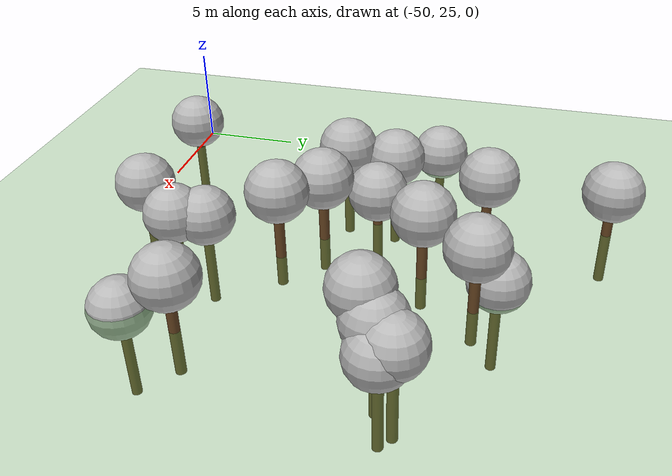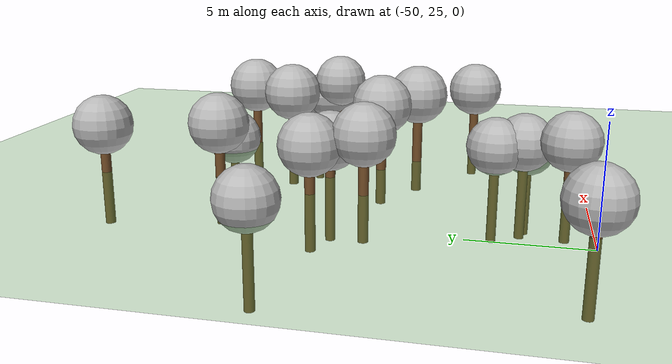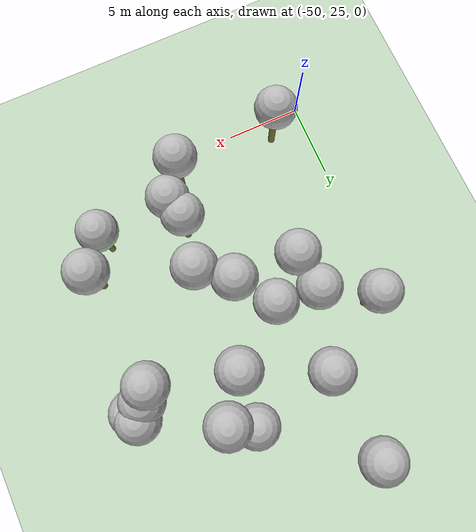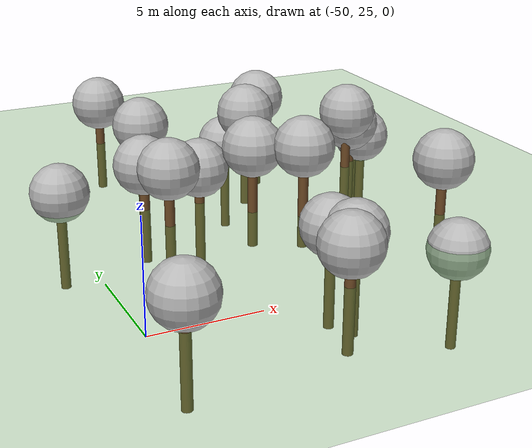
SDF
<sdf version="1.7">
 <world name="default">
  <model name="tree_simple489">
   <static>1</static>
   <link name="link">
    <pose>0 0 0.1 0 -0 0</pose>
    <collision name="collision_trunk">
     <pose>0 0 2 0 -0 0</pose>
     <geometry><cylinder><radius>0.25</radius><length>4</length></cylinder></geometry>
    </collision>
    <collision name="collision_treetop">
     <pose>0 0 5.2 0 -0 0</pose>
     <geometry><sphere><radius>1.5</radius></sphere></geometry>
    </collision>
    <visual name="trunk">
     <pose>0 0 2 0 -0 0</pose>
     <geometry><cylinder><radius>0.25</radius><length>4</length></cylinder></geometry>
     <material>
      <script>
       <uri>model://tree_simple/scripts</uri>
       <uri>model://tree_simple/materials/textures</uri>
       <name>TreeSimple/Trunk</name>
      </script>
     </material>
    </visual>
    <visual name="treetop">
     <pose>0 0 5.2 0 -0 0</pose>
     <geometry><sphere><radius>1.5</radius></sphere></geometry>
     <material>
      <script>
       <uri>model://tree_simple/scripts</uri>
       <uri>model://tree_simple/materials/textures</uri>
       <name>TreeSimple/Treetop</name>
      </script>
     </material>
    </visual>
   </link>
   <pose>-32.6635 39.3278 -3.1328 0 -0 0</pose>
  </model>
  <model name="tree_simple482">
   <static>1</static>
   <link name="link">
    <pose>0 0 0.1 0 -0 0</pose>
    <collision name="collision_trunk">
     <pose>0 0 2 0 -0 0</pose>
     <geometry><cylinder><radius>0.25</radius><length>4</length></cylinder></geometry>
    </collision>
    <collision name="collision_treetop">
     <pose>0 0 5.2 0 -0 0</pose>
     <geometry><sphere><radius>1.5</radius></sphere></geometry>
    </collision>
    <visual name="trunk">
     <pose>0 0 2 0 -0 0</pose>
     <geometry><cylinder><radius>0.25</radius><length>4</length></cylinder></geometry>
     <material>
      <script>
       <uri>model://tree_simple/scripts</uri>
       <uri>model://tree_simple/materials/textures</uri>
       <name>TreeSimple/Trunk</name>
      </script>
     </material>
    </visual>
    <visual name="treetop">
     <pose>0 0 5.2 0 -0 0</pose>
     <geometry><sphere><radius>1.5</radius></sphere></geometry>
     <material>
      <script>
       <uri>model://tree_simple/scripts</uri>
       <uri>model://tree_simple/materials/textures</uri>
       <name>TreeSimple/Treetop</name>
      </script>
     </material>
    </visual>
   </link>
   <pose>-31.7137 39.685 -4.03417 0 -0 0</pose>
  </model>
  <model name="tree_simple474">
   <static>1</static>
   <link name="link">
    <pose>0 0 0.1 0 -0 0</pose>
    <collision name="collision_trunk">
     <pose>0 0 2 0 -0 0</pose>
     <geometry><cylinder><radius>0.25</radius><length>4</length></cylinder></geometry>
    </collision>
    <collision name="collision_treetop">
     <pose>0 0 5.2 0 -0 0</pose>
     <geometry><sphere><radius>1.5</radius></sphere></geometry>
    </collision>
    <visual name="trunk">
     <pose>0 0 2 0 -0 0</pose>
     <geometry><cylinder><radius>0.25</radius><length>4</length></cylinder></geometry>
     <material>
      <script>
       <uri>model://tree_simple/scripts</uri>
       <uri>model://tree_simple/materials/textures</uri>
       <name>TreeSimple/Trunk</name>
      </script>
     </material>
    </visual>
    <visual name="treetop">
     <pose>0 0 5.2 0 -0 0</pose>
     <geometry><sphere><radius>1.5</radius></sphere></geometry>
     <material>
      <script>
       <uri>model://tree_simple/scripts</uri>
       <uri>model://tree_simple/materials/textures</uri>
       <name>TreeSimple/Treetop</name>
      </script>
     </material>
    </visual>
   </link>
   <pose>-45.5609 37.389 -2.99745 0 -0 0</pose>
  </model>
  <model name="tree_simple462">
   <static>1</static>
   <link name="link">
    <pose>0 0 0.1 0 -0 0</pose>
    <collision name="collision_trunk">
     <pose>0 0 2 0 -0 0</pose>
     <geometry><cylinder><radius>0.25</radius><length>4</length></cylinder></geometry>
    </collision>
    <collision name="collision_treetop">
     <pose>0 0 5.2 0 -0 0</pose>
     <geometry><sphere><radius>1.5</radius></sphere></geometry>
    </collision>
    <visual name="trunk">
     <pose>0 0 2 0 -0 0</pose>
     <geometry><cylinder><radius>0.25</radius><length>4</length></cylinder></geometry>
     <material>
      <script>
       <uri>model://tree_simple/scripts</uri>
       <uri>model://tree_simple/materials/textures</uri>
       <name>TreeSimple/Trunk</name>
      </script>
     </material>
    </visual>
    <visual name="treetop">
     <pose>0 0 5.2 0 -0 0</pose>
     <geometry><sphere><radius>1.5</radius></sphere></geometry>
     <material>
      <script>
       <uri>model://tree_simple/scripts</uri>
       <uri>model://tree_simple/materials/textures</uri>
       <name>TreeSimple/Treetop</name>
      </script>
     </material>
    </visual>
   </link>
   <pose>-33.3479 38.601 -2.17219 0 -0 0</pose>
  </model>
  <model name="tree_simple410">
   <static>1</static>
   <link name="link">
    <pose>0 0 0.1 0 -0 0</pose>
    <collision name="collision_trunk">
     <pose>0 0 2 0 -0 0</pose>
     <geometry><cylinder><radius>0.25</radius><length>4</length></cylinder></geometry>
    </collision>
    <collision name="collision_treetop">
     <pose>0 0 5.2 0 -0 0</pose>
     <geometry><sphere><radius>1.5</radius></sphere></geometry>
    </collision>
    <visual name="trunk">
     <pose>0 0 2 0 -0 0</pose>
     <geometry><cylinder><radius>0.25</radius><length>4</length></cylinder></geometry>
     <material>
      <script>
       <uri>model://tree_simple/scripts</uri>
       <uri>model://tree_simple/materials/textures</uri>
       <name>TreeSimple/Trunk</name>
      </script>
     </material>
    </visual>
    <visual name="treetop">
     <pose>0 0 5.2 0 -0 0</pose>
     <geometry><sphere><radius>1.5</radius></sphere></geometry>
     <material>
      <script>
       <uri>model://tree_simple/scripts</uri>
       <uri>model://tree_simple/materials/textures</uri>
       <name>TreeSimple/Treetop</name>
      </script>
     </material>
    </visual>
   </link>
   <pose>-31.9347 40.2537 -3.60387 0 -0 0</pose>
  </model>
  <model name="tree_simple336">
   <static>1</static>
   <link name="link">
    <pose>0 0 0.1 0 -0 0</pose>
    <collision name="collision_trunk">
     <pose>0 0 2 0 -0 0</pose>
     <geometry><cylinder><radius>0.25</radius><length>4</length></cylinder></geometry>
    </collision>
    <collision name="collision_treetop">
     <pose>0 0 5.2 0 -0 0</pose>
     <geometry><sphere><radius>1.5</radius></sphere></geometry>
    </collision>
    <visual name="trunk">
     <pose>0 0 2 0 -0 0</pose>
     <geometry><cylinder><radius>0.25</radius><length>4</length></cylinder></geometry>
     <material>
      <script>
       <uri>model://tree_simple/scripts</uri>
       <uri>model://tree_simple/materials/textures</uri>
       <name>TreeSimple/Trunk</name>
      </script>
     </material>
    </visual>
    <visual name="treetop">
     <pose>0 0 5.2 0 -0 0</pose>
     <geometry><sphere><radius>1.5</radius></sphere></geometry>
     <material>
      <script>
       <uri>model://tree_simple/scripts</uri>
       <uri>model://tree_simple/materials/textures</uri>
       <name>TreeSimple/Treetop</name>
      </script>
     </material>
    </visual>
   </link>
   <pose>-43.902 42.4188 -2.61094 0 -0 0</pose>
  </model>
  <model name="tree_simple331">
   <static>1</static>
   <link name="link">
    <pose>0 0 0.1 0 -0 0</pose>
    <collision name="collision_trunk">
     <pose>0 0 2 0 -0 0</pose>
     <geometry><cylinder><radius>0.25</radius><length>4</length></cylinder></geometry>
    </collision>
    <collision name="collision_treetop">
     <pose>0 0 5.2 0 -0 0</pose>
     <geometry><sphere><radius>1.5</radius></sphere></geometry>
    </collision>
    <visual name="trunk">
     <pose>0 0 2 0 -0 0</pose>
     <geometry><cylinder><radius>0.25</radius><length>4</length></cylinder></geometry>
     <material>
      <script>
       <uri>model://tree_simple/scripts</uri>
       <uri>model://tree_simple/materials/textures</uri>
       <name>TreeSimple/Trunk</name>
      </script>
     </material>
    </visual>
    <visual name="treetop">
     <pose>0 0 5.2 0 -0 0</pose>
     <geometry><sphere><radius>1.5</radius></sphere></geometry>
     <material>
      <script>
       <uri>model://tree_simple/scripts</uri>
       <uri>model://tree_simple/materials/textures</uri>
       <name>TreeSimple/Treetop</name>
      </script>
     </material>
    </visual>
   </link>
   <pose>-40.8342 34.8238 -1.96244 0 -0 0</pose>
  </model>
  <model name="tree_simple319">
   <static>1</static>
   <link name="link">
    <pose>0 0 0.1 0 -0 0</pose>
    <collision name="collision_trunk">
     <pose>0 0 2 0 -0 0</pose>
     <geometry><cylinder><radius>0.25</radius><length>4</length></cylinder></geometry>
    </collision>
    <collision name="collision_treetop">
     <pose>0 0 5.2 0 -0 0</pose>
     <geometry><sphere><radius>1.5</radius></sphere></geometry>
    </collision>
    <visual name="trunk">
     <pose>0 0 2 0 -0 0</pose>
     <geometry><cylinder><radius>0.25</radius><length>4</length></cylinder></geometry>
     <material>
      <script>
       <uri>model://tree_simple/scripts</uri>
       <uri>model://tree_simple/materials/textures</uri>
       <name>TreeSimple/Trunk</name>
      </script>
     </material>
    </visual>
    <visual name="treetop">
     <pose>0 0 5.2 0 -0 0</pose>
     <geometry><sphere><radius>1.5</radius></sphere></geometry>
     <material>
      <script>
       <uri>model://tree_simple/scripts</uri>
       <uri>model://tree_simple/materials/textures</uri>
       <name>TreeSimple/Treetop</name>
      </script>
     </material>
    </visual>
   </link>
   <pose>-33.8227 27.31 -5.68486 0 -0 0</pose>
  </model>
  <model name="tree_simple311">
   <static>1</static>
   <link name="link">
    <pose>0 0 0.1 0 -0 0</pose>
    <collision name="collision_trunk">
     <pose>0 0 2 0 -0 0</pose>
     <geometry><cylinder><radius>0.25</radius><length>4</length></cylinder></geometry>
    </collision>
    <collision name="collision_treetop">
     <pose>0 0 5.2 0 -0 0</pose>
     <geometry><sphere><radius>1.5</radius></sphere></geometry>
    </collision>
    <visual name="trunk">
     <pose>0 0 2 0 -0 0</pose>
     <geometry><cylinder><radius>0.25</radius><length>4</length></cylinder></geometry>
     <material>
      <script>
       <uri>model://tree_simple/scripts</uri>
       <uri>model://tree_simple/materials/textures</uri>
       <name>TreeSimple/Trunk</name>
      </script>
     </material>
    </visual>
    <visual name="treetop">
     <pose>0 0 5.2 0 -0 0</pose>
     <geometry><sphere><radius>1.5</radius></sphere></geometry>
     <material>
      <script>
       <uri>model://tree_simple/scripts</uri>
       <uri>model://tree_simple/materials/textures</uri>
       <name>TreeSimple/Treetop</name>
      </script>
     </material>
    </visual>
   </link>
   <pose>-49.3858 39.1709 -4.47542 0 -0 0</pose>
  </model>
  <model name="tree_simple291">
   <static>1</static>
   <link name="link">
    <pose>0 0 0.1 0 -0 0</pose>
    <collision name="collision_trunk">
     <pose>0 0 2 0 -0 0</pose>
     <geometry><cylinder><radius>0.25</radius><length>4</length></cylinder></geometry>
    </collision>
    <collision name="collision_treetop">
     <pose>0 0 5.2 0 -0 0</pose>
     <geometry><sphere><radius>1.5</radius></sphere></geometry>
    </collision>
    <visual name="trunk">
     <pose>0 0 2 0 -0 0</pose>
     <geometry><cylinder><radius>0.25</radius><length>4</length></cylinder></geometry>
     <material>
      <script>
       <uri>model://tree_simple/scripts</uri>
       <uri>model://tree_simple/materials/textures</uri>
       <name>TreeSimple/Trunk</name>
      </script>
     </material>
    </visual>
    <visual name="treetop">
     <pose>0 0 5.2 0 -0 0</pose>
     <geometry><sphere><radius>1.5</radius></sphere></geometry>
     <material>
      <script>
       <uri>model://tree_simple/scripts</uri>
       <uri>model://tree_simple/materials/textures</uri>
       <name>TreeSimple/Treetop</name>
      </script>
     </material>
    </visual>
   </link>
   <pose>-38.7806 40.086 -1.90192 0 -0 0</pose>
  </model>
  <model name="tree_simple286">
   <static>1</static>
   <link name="link">
    <pose>0 0 0.1 0 -0 0</pose>
    <collision name="collision_trunk">
     <pose>0 0 2 0 -0 0</pose>
     <geometry><cylinder><radius>0.25</radius><length>4</length></cylinder></geometry>
    </collision>
    <collision name="collision_treetop">
     <pose>0 0 5.2 0 -0 0</pose>
     <geometry><sphere><radius>1.5</radius></sphere></geometry>
    </collision>
    <visual name="trunk">
     <pose>0 0 2 0 -0 0</pose>
     <geometry><cylinder><radius>0.25</radius><length>4</length></cylinder></geometry>
     <material>
      <script>
       <uri>model://tree_simple/scripts</uri>
       <uri>model://tree_simple/materials/textures</uri>
       <name>TreeSimple/Trunk</name>
      </script>
     </material>
    </visual>
    <visual name="treetop">
     <pose>0 0 5.2 0 -0 0</pose>
     <geometry><sphere><radius>1.5</radius></sphere></geometry>
     <material>
      <script>
       <uri>model://tree_simple/scripts</uri>
       <uri>model://tree_simple/materials/textures</uri>
       <name>TreeSimple/Treetop</name>
      </script>
     </material>
    </visual>
   </link>
   <pose>-48.4344 24.9012 -3.73764 0 -0 0</pose>
  </model>
  <model name="tree_simple256">
   <static>1</static>
   <link name="link">
    <pose>0 0 0.1 0 -0 0</pose>
    <collision name="collision_trunk">
     <pose>0 0 2 0 -0 0</pose>
     <geometry><cylinder><radius>0.25</radius><length>4</length></cylinder></geometry>
    </collision>
    <collision name="collision_treetop">
     <pose>0 0 5.2 0 -0 0</pose>
     <geometry><sphere><radius>1.5</radius></sphere></geometry>
    </collision>
    <visual name="trunk">
     <pose>0 0 2 0 -0 0</pose>
     <geometry><cylinder><radius>0.25</radius><length>4</length></cylinder></geometry>
     <material>
      <script>
       <uri>model://tree_simple/scripts</uri>
       <uri>model://tree_simple/materials/textures</uri>
       <name>TreeSimple/Trunk</name>
      </script>
     </material>
    </visual>
    <visual name="treetop">
     <pose>0 0 5.2 0 -0 0</pose>
     <geometry><sphere><radius>1.5</radius></sphere></geometry>
     <material>
      <script>
       <uri>model://tree_simple/scripts</uri>
       <uri>model://tree_simple/materials/textures</uri>
       <name>TreeSimple/Treetop</name>
      </script>
     </material>
    </visual>
   </link>
   <pose>-38.4326 43.6569 -4.69893 0 -0 0</pose>
  </model>
  <model name="tree_simple247">
   <static>1</static>
   <link name="link">
    <pose>0 0 0.1 0 -0 0</pose>
    <collision name="collision_trunk">
     <pose>0 0 2 0 -0 0</pose>
     <geometry><cylinder><radius>0.25</radius><length>4</length></cylinder></geometry>
    </collision>
    <collision name="collision_treetop">
     <pose>0 0 5.2 0 -0 0</pose>
     <geometry><sphere><radius>1.5</radius></sphere></geometry>
    </collision>
    <visual name="trunk">
     <pose>0 0 2 0 -0 0</pose>
     <geometry><cylinder><radius>0.25</radius><length>4</length></cylinder></geometry>
     <material>
      <script>
       <uri>model://tree_simple/scripts</uri>
       <uri>model://tree_simple/materials/textures</uri>
       <name>TreeSimple/Trunk</name>
      </script>
     </material>
    </visual>
    <visual name="treetop">
     <pose>0 0 5.2 0 -0 0</pose>
     <geometry><sphere><radius>1.5</radius></sphere></geometry>
     <material>
      <script>
       <uri>model://tree_simple/scripts</uri>
       <uri>model://tree_simple/materials/textures</uri>
       <name>TreeSimple/Treetop</name>
      </script>
     </material>
    </visual>
   </link>
   <pose>-44.3832 48.3955 -2.88998 0 -0 0</pose>
  </model>
  <model name="tree_simple208">
   <static>1</static>
   <link name="link">
    <pose>0 0 0.1 0 -0 0</pose>
    <collision name="collision_trunk">
     <pose>0 0 2 0 -0 0</pose>
     <geometry><cylinder><radius>0.25</radius><length>4</length></cylinder></geometry>
    </collision>
    <collision name="collision_treetop">
     <pose>0 0 5.2 0 -0 0</pose>
     <geometry><sphere><radius>1.5</radius></sphere></geometry>
    </collision>
    <visual name="trunk">
     <pose>0 0 2 0 -0 0</pose>
     <geometry><cylinder><radius>0.25</radius><length>4</length></cylinder></geometry>
     <material>
      <script>
       <uri>model://tree_simple/scripts</uri>
       <uri>model://tree_simple/materials/textures</uri>
       <name>TreeSimple/Trunk</name>
      </script>
     </material>
    </visual>
    <visual name="treetop">
     <pose>0 0 5.2 0 -0 0</pose>
     <geometry><sphere><radius>1.5</radius></sphere></geometry>
     <material>
      <script>
       <uri>model://tree_simple/scripts</uri>
       <uri>model://tree_simple/materials/textures</uri>
       <name>TreeSimple/Treetop</name>
      </script>
     </material>
    </visual>
   </link>
   <pose>-39.1561 27.6776 -3.93616 0 -0 0</pose>
  </model>
  <model name="tree_simple112">
   <static>1</static>
   <link name="link">
    <pose>0 0 0.1 0 -0 0</pose>
    <collision name="collision_trunk">
     <pose>0 0 2 0 -0 0</pose>
     <geometry><cylinder><radius>0.25</radius><length>4</length></cylinder></geometry>
    </collision>
    <collision name="collision_treetop">
     <pose>0 0 5.2 0 -0 0</pose>
     <geometry><sphere><radius>1.5</radius></sphere></geometry>
    </collision>
    <visual name="trunk">
     <pose>0 0 2 0 -0 0</pose>
     <geometry><cylinder><radius>0.25</radius><length>4</length></cylinder></geometry>
     <material>
      <script>
       <uri>model://tree_simple/scripts</uri>
       <uri>model://tree_simple/materials/textures</uri>
       <name>TreeSimple/Trunk</name>
      </script>
     </material>
    </visual>
    <visual name="treetop">
     <pose>0 0 5.2 0 -0 0</pose>
     <geometry><sphere><radius>1.5</radius></sphere></geometry>
     <material>
      <script>
       <uri>model://tree_simple/scripts</uri>
       <uri>model://tree_simple/materials/textures</uri>
       <name>TreeSimple/Treetop</name>
      </script>
     </material>
    </visual>
   </link>
   <pose>-36.8628 42.7576 -1.97765 0 -0 0</pose>
  </model>
  <model name="tree_simple109">
   <static>1</static>
   <link name="link">
    <pose>0 0 0.1 0 -0 0</pose>
    <collision name="collision_trunk">
     <pose>0 0 2 0 -0 0</pose>
     <geometry><cylinder><radius>0.25</radius><length>4</length></cylinder></geometry>
    </collision>
    <collision name="collision_treetop">
     <pose>0 0 5.2 0 -0 0</pose>
     <geometry><sphere><radius>1.5</radius></sphere></geometry>
    </collision>
    <visual name="trunk">
     <pose>0 0 2 0 -0 0</pose>
     <geometry><cylinder><radius>0.25</radius><length>4</length></cylinder></geometry>
     <material>
      <script>
       <uri>model://tree_simple/scripts</uri>
       <uri>model://tree_simple/materials/textures</uri>
       <name>TreeSimple/Trunk</name>
      </script>
     </material>
    </visual>
    <visual name="treetop">
     <pose>0 0 5.2 0 -0 0</pose>
     <geometry><sphere><radius>1.5</radius></sphere></geometry>
     <material>
      <script>
       <uri>model://tree_simple/scripts</uri>
       <uri>model://tree_simple/materials/textures</uri>
       <name>TreeSimple/Treetop</name>
      </script>
     </material>
    </visual>
   </link>
   <pose>-42.7379 37.0728 -3.48466 0 -0 0</pose>
  </model>
  <model name="tree_simple53">
   <static>1</static>
   <link name="link">
    <pose>0 0 0.1 0 -0 0</pose>
    <collision name="collision_trunk">
     <pose>0 0 2 0 -0 0</pose>
     <geometry><cylinder><radius>0.25</radius><length>4</length></cylinder></geometry>
    </collision>
    <collision name="collision_treetop">
     <pose>0 0 5.2 0 -0 0</pose>
     <geometry><sphere><radius>1.5</radius></sphere></geometry>
    </collision>
    <visual name="trunk">
     <pose>0 0 2 0 -0 0</pose>
     <geometry><cylinder><radius>0.25</radius><length>4</length></cylinder></geometry>
     <material>
      <script>
       <uri>model://tree_simple/scripts</uri>
       <uri>model://tree_simple/materials/textures</uri>
       <name>TreeSimple/Trunk</name>
      </script>
     </material>
    </visual>
    <visual name="treetop">
     <pose>0 0 5.2 0 -0 0</pose>
     <geometry><sphere><radius>1.5</radius></sphere></geometry>
     <material>
      <script>
       <uri>model://tree_simple/scripts</uri>
       <uri>model://tree_simple/materials/textures</uri>
       <name>TreeSimple/Treetop</name>
      </script>
     </material>
    </visual>
   </link>
   <pose>-38.8612 33.2267 -1.74895 0 -0 0</pose>
  </model>
  <model name="tree_simple36">
   <static>1</static>
   <link name="link">
    <pose>0 0 0.1 0 -0 0</pose>
    <collision name="collision_trunk">
     <pose>0 0 2 0 -0 0</pose>
     <geometry><cylinder><radius>0.25</radius><length>4</length></cylinder></geometry>
    </collision>
    <collision name="collision_treetop">
     <pose>0 0 5.2 0 -0 0</pose>
     <geometry><sphere><radius>1.5</radius></sphere></geometry>
    </collision>
    <visual name="trunk">
     <pose>0 0 2 0 -0 0</pose>
     <geometry><cylinder><radius>0.25</radius><length>4</length></cylinder></geometry>
     <material>
      <script>
       <uri>model://tree_simple/scripts</uri>
       <uri>model://tree_simple/materials/textures</uri>
       <name>TreeSimple/Trunk</name>
      </script>
     </material>
    </visual>
    <visual name="treetop">
     <pose>0 0 5.2 0 -0 0</pose>
     <geometry><sphere><radius>1.5</radius></sphere></geometry>
     <material>
      <script>
       <uri>model://tree_simple/scripts</uri>
       <uri>model://tree_simple/materials/textures</uri>
       <name>TreeSimple/Treetop</name>
      </script>
     </material>
    </visual>
   </link>
   <pose>-40.7093 25.4886 -3.38473 0 -0 0</pose>
  </model>
  <model name="tree_simple34">
   <static>1</static>
   <link name="link">
    <pose>0 0 0.1 0 -0 0</pose>
    <collision name="collision_trunk">
     <pose>0 0 2 0 -0 0</pose>
     <geometry><cylinder><radius>0.25</radius><length>4</length></cylinder></geometry>
    </collision>
    <collision name="collision_treetop">
     <pose>0 0 5.2 0 -0 0</pose>
     <geometry><sphere><radius>1.5</radius></sphere></geometry>
    </collision>
    <visual name="trunk">
     <pose>0 0 2 0 -0 0</pose>
     <geometry><cylinder><radius>0.25</radius><length>4</length></cylinder></geometry>
     <material>
      <script>
       <uri>model://tree_simple/scripts</uri>
       <uri>model://tree_simple/materials/textures</uri>
       <name>TreeSimple/Trunk</name>
      </script>
     </material>
    </visual>
    <visual name="treetop">
     <pose>0 0 5.2 0 -0 0</pose>
     <geometry><sphere><radius>1.5</radius></sphere></geometry>
     <material>
      <script>
       <uri>model://tree_simple/scripts</uri>
       <uri>model://tree_simple/materials/textures</uri>
       <name>TreeSimple/Treetop</name>
      </script>
     </material>
    </visual>
   </link>
   <pose>-32.5862 30.5927 -2.49575 0 -0 0</pose>
  </model>
  <model name="tree_simple25">
   <static>1</static>
   <link name="link">
    <pose>0 0 0.1 0 -0 0</pose>
    <collision name="collision_trunk">
     <pose>0 0 2 0 -0 0</pose>
     <geometry><cylinder><radius>0.25</radius><length>4</length></cylinder></geometry>
    </collision>
    <collision name="collision_treetop">
     <pose>0 0 5.2 0 -0 0</pose>
     <geometry><sphere><radius>1.5</radius></sphere></geometry>
    </collision>
    <visual name="trunk">
     <pose>0 0 2 0 -0 0</pose>
     <geometry><cylinder><radius>0.25</radius><length>4</length></cylinder></geometry>
     <material>
      <script>
       <uri>model://tree_simple/scripts</uri>
       <uri>model://tree_simple/materials/textures</uri>
       <name>TreeSimple/Trunk</name>
      </script>
     </material>
    </visual>
    <visual name="treetop">
     <pose>0 0 5.2 0 -0 0</pose>
     <geometry><sphere><radius>1.5</radius></sphere></geometry>
     <material>
      <script>
       <uri>model://tree_simple/scripts</uri>
       <uri>model://tree_simple/materials/textures</uri>
       <name>TreeSimple/Treetop</name>
      </script>
     </material>
    </visual>
   </link>
   <pose>-39.6 29.1165 -4.11649 0 -0 0</pose>
  </model>
  <model name="tree_simple7">
   <static>1</static>
   <link name="link">
    <pose>0 0 0.1 0 -0 0</pose>
    <collision name="collision_trunk">
     <pose>0 0 2 0 -0 0</pose>
     <geometry><cylinder><radius>0.25</radius><length>4</length></cylinder></geometry>
    </collision>
    <collision name="collision_treetop">
     <pose>0 0 5.2 0 -0 0</pose>
     <geometry><sphere><radius>1.5</radius></sphere></geometry>
    </collision>
    <visual name="trunk">
     <pose>0 0 2 0 -0 0</pose>
     <geometry><cylinder><radius>0.25</radius><length>4</length></cylinder></geometry>
     <material>
      <script>
       <uri>model://tree_simple/scripts</uri>
       <uri>model://tree_simple/materials/textures</uri>
       <name>TreeSimple/Trunk</name>
      </script>
     </material>
    </visual>
    <visual name="treetop">
     <pose>0 0 5.2 0 -0 0</pose>
     <geometry><sphere><radius>1.5</radius></sphere></geometry>
     <material>
      <script>
       <uri>model://tree_simple/scripts</uri>
       <uri>model://tree_simple/materials/textures</uri>
       <name>TreeSimple/Treetop</name>
      </script>
     </material>
    </visual>
   </link>
   <pose>-45.1753 34.9225 -2.47306 0 -0 0</pose>
  </model>
  <model name="ground_plane">
   <static>1</static>
   <link name="link">
    <collision name="collision">
     <geometry><plane><normal>0 0 1</normal><size>250 250</size></plane></geometry>
     <surface><friction><ode><mu>1</mu><mu2>1</mu2></ode></friction></surface>
    </collision>
    <visual name="grass">
     <cast_shadows>0</cast_shadows>
     <geometry><plane><normal>0 0 1</normal><size>150 250</size></plane></geometry>
     <material>
      <script><uri>file://media/materials/scripts/Gazebo.material</uri><name>Gazebo/Grass</name></script>
     </material>
    </visual>
   </link>
  </model>
 </world>
</sdf>
